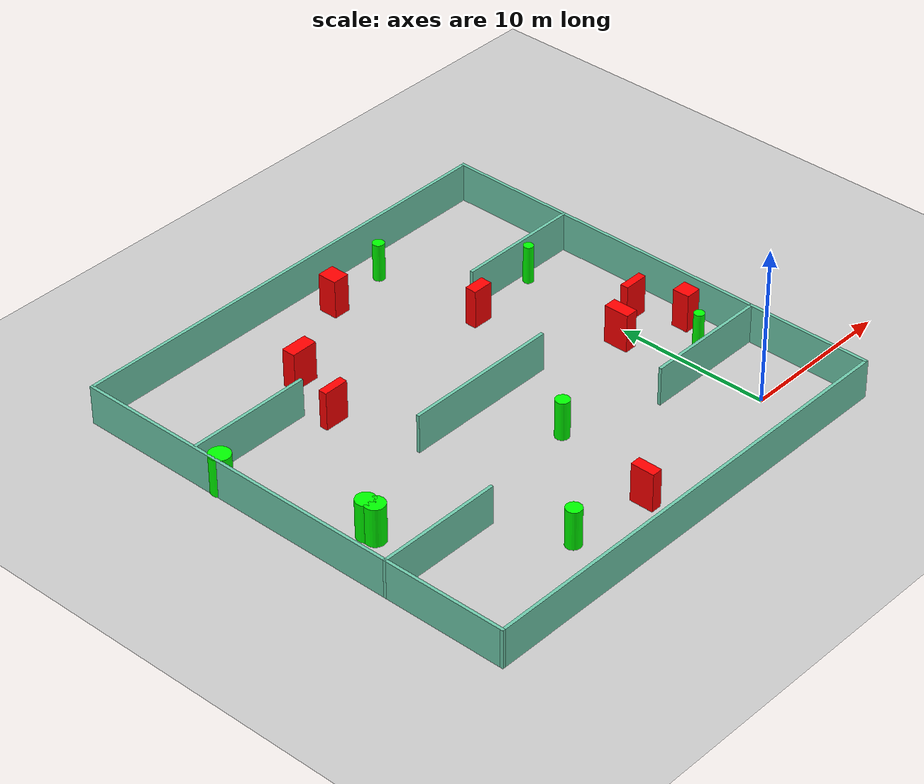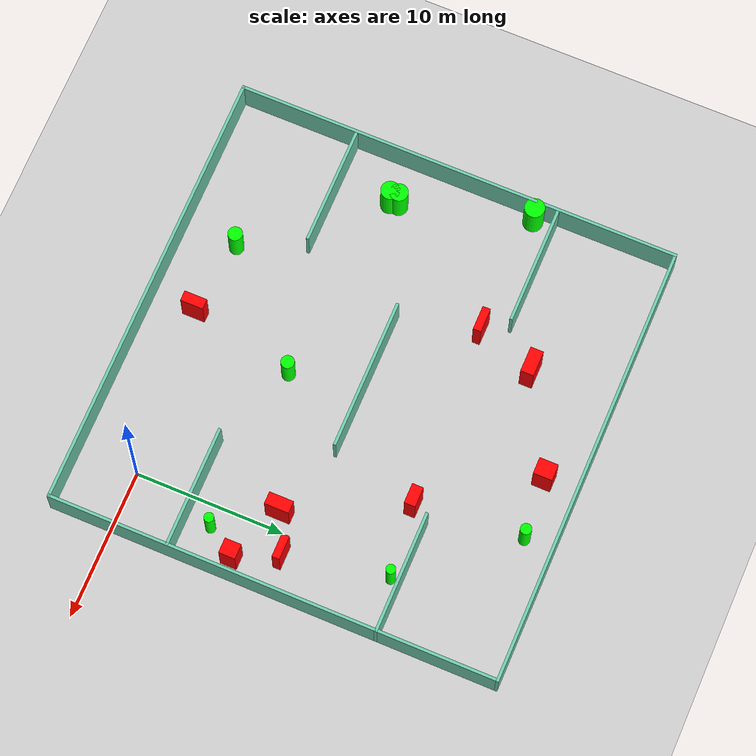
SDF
<sdf version="1.7">
 <world name="default">
  <light name="sun" type="directional">
   <pose>0 0 10 0 -0 0</pose>
   <diffuse>0.8 0.8 0.8 1</diffuse>
   <specular>0.2 0.2 0.2 1</specular>
   <attenuation>
    <range>1000</range>
    <constant>0.9</constant>
    <linear>0.01</linear>
    <quadratic>0.001</quadratic>
   </attenuation>
   <direction>-0.5 0.1 -0.9</direction>
   <spot><inner_angle>0</inner_angle><outer_angle>0</outer_angle><falloff>0</falloff></spot>
  </light>
  <model name="ground_plane">
   <static>1</static>
   <link name="link">
    <collision name="collision">
     <geometry><plane><normal>0 0 1</normal><size>100 100</size></plane></geometry>
     <surface>
      <contact><collide_bitmask>65535</collide_bitmask></contact>
      <friction><ode><mu>100</mu><mu2>50</mu2></ode></friction>
     </surface>
    </collision>
    <visual name="visual">
     <cast_shadows>0</cast_shadows>
     <geometry><plane><normal>0 0 1</normal><size>100 100</size></plane></geometry>
     <material>
      <script><uri>file://media/materials/scripts/gazebo.material</uri><name>Gazebo/Grey</name></script>
     </material>
    </visual>
   </link>
  </model>
  <gravity>0 0 -9.8</gravity>
  <magnetic_field>6e-06 2.3e-05 -4.2e-05</magnetic_field>
  <atmosphere type="adiabatic"/>
  <physics type="ode">
   <max_step_size>0.001</max_step_size>
   <real_time_factor>1</real_time_factor>
   <real_time_update_rate>1000</real_time_update_rate>
  </physics>
  <scene><ambient>0.4 0.4 0.4 1</ambient><background>0.7 0.7 0.7 1</background><shadows>1</shadows></scene>
  <spherical_coordinates>
   <surface_model>EARTH_WGS84</surface_model>
   <latitude_deg>0</latitude_deg>
   <longitude_deg>0</longitude_deg>
   <elevation>0</elevation>
   <heading_deg>0</heading_deg>
  </spherical_coordinates>
  <model name="my_base_walls">
   <link name="Wall_10">
    <collision name="Wall_10_Collision">
     <geometry><box><size>8.2 0.2 2.5</size></box></geometry>
     <pose>0 0 1.25 0 -0 0</pose>
    </collision>
    <visual name="Wall_10_Visual">
     <pose>0 0 1.25 0 -0 0</pose>
     <geometry><box><size>8.2 0.2 2.5</size></box></geometry>
     <material>
      <script><uri>file://media/materials/scripts/gazebo.material</uri><name>Gazebo/Grey</name></script>
      <ambient>0.435294 0.796078 0.67451 1</ambient>
     </material>
     <meta><layer>0</layer></meta>
    </visual>
    <pose>-11 -7 0 0 -0 0</pose>
   </link>
   <link name="Wall_12">
    <collision name="Wall_12_Collision">
     <geometry><box><size>8.2 0.2 2.5</size></box></geometry>
     <pose>0 0 1.25 0 -0 0</pose>
    </collision>
    <visual name="Wall_12_Visual">
     <pose>0 0 1.25 0 -0 0</pose>
     <geometry><box><size>8.2 0.2 2.5</size></box></geometry>
     <material>
      <script><uri>file://media/materials/scripts/gazebo.material</uri><name>Gazebo/Grey</name></script>
      <ambient>0.435294 0.796078 0.67451 1</ambient>
     </material>
     <meta><layer>0</layer></meta>
    </visual>
    <pose>-11 7 0 0 -0 0</pose>
   </link>
   <link name="Wall_14">
    <collision name="Wall_14_Collision">
     <geometry><box><size>8.2 0.2 2.5</size></box></geometry>
     <pose>0 0 1.25 0 -0 0</pose>
    </collision>
    <visual name="Wall_14_Visual">
     <pose>0 0 1.25 0 -0 0</pose>
     <geometry><box><size>8.2 0.2 2.5</size></box></geometry>
     <material>
      <script><uri>file://media/materials/scripts/gazebo.material</uri><name>Gazebo/Grey</name></script>
      <ambient>0.435294 0.796078 0.67451 1</ambient>
     </material>
     <meta><layer>0</layer></meta>
    </visual>
    <pose>11 7 0 0 -0 3.14159</pose>
   </link>
   <link name="Wall_16">
    <collision name="Wall_16_Collision">
     <geometry><box><size>10.2 0.2 2.5</size></box></geometry>
     <pose>0 0 1.25 0 -0 0</pose>
    </collision>
    <visual name="Wall_16_Visual">
     <pose>0 0 1.25 0 -0 0</pose>
     <geometry><box><size>10.2 0.2 2.5</size></box></geometry>
     <material>
      <script><uri>file://media/materials/scripts/gazebo.material</uri><name>Gazebo/Grey</name></script>
      <ambient>0.435294 0.796078 0.67451 1</ambient>
     </material>
     <meta><layer>0</layer></meta>
    </visual>
    <pose>0 0 0 0 -0 3.14159</pose>
   </link>
   <link name="Wall_2">
    <collision name="Wall_2_Collision">
     <geometry><box><size>30.2 0.2 2.5</size></box></geometry>
     <pose>0 0 1.25 0 -0 0</pose>
    </collision>
    <visual name="Wall_2_Visual">
     <pose>0 0 1.25 0 -0 0</pose>
     <geometry><box><size>30.2 0.2 2.5</size></box></geometry>
     <material>
      <script><uri>file://media/materials/scripts/gazebo.material</uri><name>Gazebo/Grey</name></script>
      <ambient>0.435294 0.796078 0.67451 1</ambient>
     </material>
     <meta><layer>0</layer></meta>
    </visual>
    <pose>0 -15 0 0 -0 3.14159</pose>
   </link>
   <link name="Wall_3">
    <collision name="Wall_3_Collision">
     <geometry><box><size>30.2 0.2 2.5</size></box></geometry>
     <pose>0 0 1.25 0 -0 0</pose>
    </collision>
    <visual name="Wall_3_Visual">
     <pose>0 0 1.25 0 -0 0</pose>
     <geometry><box><size>30.2 0.2 2.5</size></box></geometry>
     <material>
      <script><uri>file://media/materials/scripts/gazebo.material</uri><name>Gazebo/Grey</name></script>
      <ambient>0.435294 0.796078 0.67451 1</ambient>
     </material>
     <meta><layer>0</layer></meta>
    </visual>
    <pose>-15 0 0 0 -0 1.5708</pose>
   </link>
   <link name="Wall_4">
    <collision name="Wall_4_Collision">
     <geometry><box><size>30.2 0.2 2.5</size></box></geometry>
     <pose>0 0 1.25 0 -0 0</pose>
    </collision>
    <visual name="Wall_4_Visual">
     <pose>0 0 1.25 0 -0 0</pose>
     <geometry><box><size>30.2 0.2 2.5</size></box></geometry>
     <material>
      <script><uri>file://media/materials/scripts/gazebo.material</uri><name>Gazebo/Grey</name></script>
      <ambient>0.435294 0.796078 0.67451 1</ambient>
     </material>
     <meta><layer>0</layer></meta>
    </visual>
    <pose>0 15 0 0 -0 0</pose>
   </link>
   <link name="Wall_6">
    <collision name="Wall_6_Collision">
     <geometry><box><size>30.2 0.2 2.5</size></box></geometry>
     <pose>0 0 1.25 0 -0 0</pose>
    </collision>
    <visual name="Wall_6_Visual">
     <pose>0 0 1.25 0 -0 0</pose>
     <geometry><box><size>30.2 0.2 2.5</size></box></geometry>
     <material>
      <script><uri>file://media/materials/scripts/gazebo.material</uri><name>Gazebo/Grey</name></script>
      <ambient>0.435294 0.796078 0.67451 1</ambient>
     </material>
     <meta><layer>0</layer></meta>
    </visual>
    <pose>15 0 0 0 -0 1.5708</pose>
   </link>
   <link name="Wall_8">
    <collision name="Wall_8_Collision">
     <geometry><box><size>8.2 0.2 2.5</size></box></geometry>
     <pose>0 0 1.25 0 -0 0</pose>
    </collision>
    <visual name="Wall_8_Visual">
     <pose>0 0 1.25 0 -0 0</pose>
     <geometry><box><size>8.2 0.2 2.5</size></box></geometry>
     <material>
      <script><uri>file://media/materials/scripts/gazebo.material</uri><name>Gazebo/Grey</name></script>
      <ambient>0.435294 0.796078 0.67451 1</ambient>
     </material>
     <meta><layer>0</layer></meta>
    </visual>
    <pose>11 -7 0 0 -0 3.14159</pose>
   </link>
   <static>1</static>
   <pose>-11 11 0 0 -0 0</pose>
  </model>
  <model name="cylinder1">
   <static>1</static>
   <link name="link">
    <inertial>
     <mass>1</mass>
     <inertia><ixx>0.5</ixx><ixy>0</ixy><ixz>0</ixz><iyy>0.5</iyy><iyz>0</iyz><izz>1</izz></inertia>
    </inertial>
    <collision name="collision">
     <geometry><cylinder><radius>0.6667152588854375</radius><length>2.5</length></cylinder></geometry>
    </collision>
    <visual name="visual">
     <geometry><cylinder><radius>0.6667152588854375</radius><length>2.5</length></cylinder></geometry>
     <material>
      <ambient>0 1 0 1</ambient>
      <diffuse>0 1 0 1</diffuse>
      <specular>0.1 0.1 0.1 1</specular>
      <emissive>0 0 0 0</emissive>
     </material>
    </visual>
   </link>
   <pose>-25.516444797574618 16.556116974125956 1.25 0 0 0</pose>
  </model>
  <model name="cylinder2">
   <static>1</static>
   <link name="link">
    <inertial>
     <mass>1</mass>
     <inertia><ixx>0.5</ixx><ixy>0</ixy><ixz>0</ixz><iyy>0.5</iyy><iyz>0</iyz><izz>1</izz></inertia>
    </inertial>
    <collision name="collision">
     <geometry><cylinder><radius>0.3737477724439043</radius><length>2.5</length></cylinder></geometry>
    </collision>
    <visual name="visual">
     <geometry><cylinder><radius>0.3737477724439043</radius><length>2.5</length></cylinder></geometry>
     <material>
      <ambient>0 1 0 1</ambient>
      <diffuse>0 1 0 1</diffuse>
      <specular>0.1 0.1 0.1 1</specular>
      <emissive>0 0 0 0</emissive>
     </material>
    </visual>
   </link>
   <pose>-5.505367031244267 24.020359138373884 1.25 0 0 0</pose>
  </model>
  <model name="cylinder3">
   <static>1</static>
   <link name="link">
    <inertial>
     <mass>1</mass>
     <inertia><ixx>0.5</ixx><ixy>0</ixy><ixz>0</ixz><iyy>0.5</iyy><iyz>0</iyz><izz>1</izz></inertia>
    </inertial>
    <collision name="collision">
     <geometry><cylinder><radius>0.44568754188689175</radius><length>2.5</length></cylinder></geometry>
    </collision>
    <visual name="visual">
     <geometry><cylinder><radius>0.44568754188689175</radius><length>2.5</length></cylinder></geometry>
     <material>
      <ambient>0 1 0 1</ambient>
      <diffuse>0 1 0 1</diffuse>
      <specular>0.1 0.1 0.1 1</specular>
      <emissive>0 0 0 0</emissive>
     </material>
    </visual>
   </link>
   <pose>-9.790036317065482 6.142421599829012 1.25 0 0 0</pose>
  </model>
  <model name="cylinder4">
   <static>1</static>
   <link name="link">
    <inertial>
     <mass>1</mass>
     <inertia><ixx>0.5</ixx><ixy>0</ixy><ixz>0</ixz><iyy>0.5</iyy><iyz>0</iyz><izz>1</izz></inertia>
    </inertial>
    <collision name="collision">
     <geometry><cylinder><radius>0.6139552819495597</radius><length>2.5</length></cylinder></geometry>
    </collision>
    <visual name="visual">
     <geometry><cylinder><radius>0.6139552819495597</radius><length>2.5</length></cylinder></geometry>
     <material>
      <ambient>0 1 0 1</ambient>
      <diffuse>0 1 0 1</diffuse>
      <specular>0.1 0.1 0.1 1</specular>
      <emissive>0 0 0 0</emissive>
     </material>
    </visual>
   </link>
   <pose>-23.128783240421342 8.137071886700024 1.25 0 0 0</pose>
  </model>
  <model name="cylinder5">
   <static>1</static>
   <link name="link">
    <inertial>
     <mass>1</mass>
     <inertia><ixx>0.5</ixx><ixy>0</ixy><ixz>0</ixz><iyy>0.5</iyy><iyz>0</iyz><izz>1</izz></inertia>
    </inertial>
    <collision name="collision">
     <geometry><cylinder><radius>0.3270590452851911</radius><length>2.5</length></cylinder></geometry>
    </collision>
    <visual name="visual">
     <geometry><cylinder><radius>0.3270590452851911</radius><length>2.5</length></cylinder></geometry>
     <material>
      <ambient>0 1 0 1</ambient>
      <diffuse>0 1 0 1</diffuse>
      <specular>0.1 0.1 0.1 1</specular>
      <emissive>0 0 0 0</emissive>
     </material>
    </visual>
   </link>
   <pose>1.430259271504692 5.698677138476116 1.25 0 0 0</pose>
  </model>
  <model name="cylinder6">
   <static>1</static>
   <link name="link">
    <inertial>
     <mass>1</mass>
     <inertia><ixx>0.5</ixx><ixy>0</ixy><ixz>0</ixz><iyy>0.5</iyy><iyz>0</iyz><izz>1</izz></inertia>
    </inertial>
    <collision name="collision">
     <geometry><cylinder><radius>0.4872371478784939</radius><length>2.5</length></cylinder></geometry>
    </collision>
    <visual name="visual">
     <geometry><cylinder><radius>0.4872371478784939</radius><length>2.5</length></cylinder></geometry>
     <material>
      <ambient>0 1 0 1</ambient>
      <diffuse>0 1 0 1</diffuse>
      <specular>0.1 0.1 0.1 1</specular>
      <emissive>0 0 0 0</emissive>
     </material>
    </visual>
   </link>
   <pose>-16.429818852912845 -0.3807831901179526 1.25 0 0 0</pose>
  </model>
  <model name="cylinder7">
   <static>1</static>
   <link name="link">
    <inertial>
     <mass>1</mass>
     <inertia><ixx>0.5</ixx><ixy>0</ixy><ixz>0</ixz><iyy>0.5</iyy><iyz>0</iyz><izz>1</izz></inertia>
    </inertial>
    <collision name="collision">
     <geometry><cylinder><radius>0.32286874336680604</radius><length>2.5</length></cylinder></geometry>
    </collision>
    <visual name="visual">
     <geometry><cylinder><radius>0.32286874336680604</radius><length>2.5</length></cylinder></geometry>
     <material>
      <ambient>0 1 0 1</ambient>
      <diffuse>0 1 0 1</diffuse>
      <specular>0.1 0.1 0.1 1</specular>
      <emissive>0 0 0 0</emissive>
     </material>
    </visual>
   </link>
   <pose>0.10123914506734977 17.333885098602224 1.25 0 0 0</pose>
  </model>
  <model name="cylinder8">
   <static>1</static>
   <link name="link">
    <inertial>
     <mass>1</mass>
     <inertia><ixx>0.5</ixx><ixy>0</ixy><ixz>0</ixz><iyy>0.5</iyy><iyz>0</iyz><izz>1</izz></inertia>
    </inertial>
    <collision name="collision">
     <geometry><cylinder><radius>0.6340549064327886</radius><length>2.5</length></cylinder></geometry>
    </collision>
    <visual name="visual">
     <geometry><cylinder><radius>0.6340549064327886</radius><length>2.5</length></cylinder></geometry>
     <material>
      <ambient>0 1 0 1</ambient>
      <diffuse>0 1 0 1</diffuse>
      <specular>0.1 0.1 0.1 1</specular>
      <emissive>0 0 0 0</emissive>
     </material>
    </visual>
   </link>
   <pose>-23.041473714689452 7.5668798836765205 1.25 0 0 0</pose>
  </model>
  <model name="box1">
   <static>1</static>
   <link name="link">
    <inertial>
     <mass>1</mass>
     <inertia><ixx>0.083</ixx><ixy>0</ixy><ixz>0</ixz><iyy>0.083</iyy><iyz>0</iyz><izz>0.083</izz></inertia>
    </inertial>
    <collision name="collision">
     <geometry><box><size>0.8258800428215853 1.634994394120532 2.5</size></box></geometry>
    </collision>
    <visual name="visual">
     <geometry><box><size>0.8258800428215853 1.634994394120532 2.5</size></box></geometry>
     <material>
      <ambient>1 0 0 1</ambient>
      <diffuse>1 0 0 1</diffuse>
      <specular>0.1 0.1 0.1 1</specular>
      <emissive>0 0 0 0</emissive>
     </material>
    </visual>
    <sensor name="my_contact" type="contact">
     <contact><collision>box_collision</collision><topic>__default_topic__</topic></contact>
    </sensor>
   </link>
   <pose>-1.1352610210050926 9.302101735944074 1.25 0 0 0</pose>
  </model>
  <model name="box2">
   <static>1</static>
   <link name="link">
    <inertial>
     <mass>1</mass>
     <inertia><ixx>0.083</ixx><ixy>0</ixy><ixz>0</ixz><iyy>0.083</iyy><iyz>0</iyz><izz>0.083</izz></inertia>
    </inertial>
    <collision name="collision">
     <geometry><box><size>0.6915953975500875 1.5412371417443604 2.5</size></box></geometry>
    </collision>
    <visual name="visual">
     <geometry><box><size>0.6915953975500875 1.5412371417443604 2.5</size></box></geometry>
     <material>
      <ambient>1 0 0 1</ambient>
      <diffuse>1 0 0 1</diffuse>
      <specular>0.1 0.1 0.1 1</specular>
      <emissive>0 0 0 0</emissive>
     </material>
    </visual>
    <sensor name="my_contact" type="contact">
     <contact><collision>box_collision</collision><topic>__default_topic__</topic></contact>
    </sensor>
   </link>
   <pose>-11.289704253538709 -0.9879010240261401 1.25 0 0 0</pose>
  </model>
  <model name="box3">
   <static>1</static>
   <link name="link">
    <inertial>
     <mass>1</mass>
     <inertia><ixx>0.083</ixx><ixy>0</ixy><ixz>0</ixz><iyy>0.083</iyy><iyz>0</iyz><izz>0.083</izz></inertia>
    </inertial>
    <collision name="collision">
     <geometry><box><size>1.3476355921828187 0.7479571964580785 2.5</size></box></geometry>
    </collision>
    <visual name="visual">
     <geometry><box><size>1.3476355921828187 0.7479571964580785 2.5</size></box></geometry>
     <material>
      <ambient>1 0 0 1</ambient>
      <diffuse>1 0 0 1</diffuse>
      <specular>0.1 0.1 0.1 1</specular>
      <emissive>0 0 0 0</emissive>
     </material>
    </visual>
    <sensor name="my_contact" type="contact">
     <contact><collision>box_collision</collision><topic>__default_topic__</topic></contact>
    </sensor>
   </link>
   <pose>-4.822593056983372 16.800852647727517 1.25 0 0 0</pose>
  </model>
  <model name="box4">
   <static>1</static>
   <link name="link">
    <inertial>
     <mass>1</mass>
     <inertia><ixx>0.083</ixx><ixy>0</ixy><ixz>0</ixz><iyy>0.083</iyy><iyz>0</iyz><izz>0.083</izz></inertia>
    </inertial>
    <collision name="collision">
     <geometry><box><size>1.6007360533881447 0.509399749335341 2.5</size></box></geometry>
    </collision>
    <visual name="visual">
     <geometry><box><size>1.6007360533881447 0.509399749335341 2.5</size></box></geometry>
     <material>
      <ambient>1 0 0 1</ambient>
      <diffuse>1 0 0 1</diffuse>
      <specular>0.1 0.1 0.1 1</specular>
      <emissive>0 0 0 0</emissive>
     </material>
    </visual>
    <sensor name="my_contact" type="contact">
     <contact><collision>box_collision</collision><topic>__default_topic__</topic></contact>
    </sensor>
   </link>
   <pose>1.411608126490421 10.520562233907512 1.25 0 0 0</pose>
  </model>
  <model name="box5">
   <static>1</static>
   <link name="link">
    <inertial>
     <mass>1</mass>
     <inertia><ixx>0.083</ixx><ixy>0</ixy><ixz>0</ixz><iyy>0.083</iyy><iyz>0</iyz><izz>0.083</izz></inertia>
    </inertial>
    <collision name="collision">
     <geometry><box><size>1.104405126206336 1.265407513849906 2.5</size></box></geometry>
    </collision>
    <visual name="visual">
     <geometry><box><size>1.104405126206336 1.265407513849906 2.5</size></box></geometry>
     <material>
      <ambient>1 0 0 1</ambient>
      <diffuse>1 0 0 1</diffuse>
      <specular>0.1 0.1 0.1 1</specular>
      <emissive>0 0 0 0</emissive>
     </material>
    </visual>
    <sensor name="my_contact" type="contact">
     <contact><collision>box_collision</collision><topic>__default_topic__</topic></contact>
    </sensor>
   </link>
   <pose>-9.57992419073588 23.702093985711716 1.25 0 0 0</pose>
  </model>
  <model name="box6">
   <static>1</static>
   <link name="link">
    <inertial>
     <mass>1</mass>
     <inertia><ixx>0.083</ixx><ixy>0</ixy><ixz>0</ixz><iyy>0.083</iyy><iyz>0</iyz><izz>0.083</izz></inertia>
    </inertial>
    <collision name="collision">
     <geometry><box><size>1.7283581812770814 0.8816044695654317 2.5</size></box></geometry>
    </collision>
    <visual name="visual">
     <geometry><box><size>1.7283581812770814 0.8816044695654317 2.5</size></box></geometry>
     <material>
      <ambient>1 0 0 1</ambient>
      <diffuse>1 0 0 1</diffuse>
      <specular>0.1 0.1 0.1 1</specular>
      <emissive>0 0 0 0</emissive>
     </material>
    </visual>
    <sensor name="my_contact" type="contact">
     <contact><collision>box_collision</collision><topic>__default_topic__</topic></contact>
    </sensor>
   </link>
   <pose>-15.810554933756462 20.27337904284673 1.25 0 0 0</pose>
  </model>
  <model name="box7">
   <static>1</static>
   <link name="link">
    <inertial>
     <mass>1</mass>
     <inertia><ixx>0.083</ixx><ixy>0</ixy><ixz>0</ixz><iyy>0.083</iyy><iyz>0</iyz><izz>0.083</izz></inertia>
    </inertial>
    <collision name="collision">
     <geometry><box><size>1.0149217758947464 1.0995860052839908 2.5</size></box></geometry>
    </collision>
    <visual name="visual">
     <geometry><box><size>1.0149217758947464 1.0995860052839908 2.5</size></box></geometry>
     <material>
      <ambient>1 0 0 1</ambient>
      <diffuse>1 0 0 1</diffuse>
      <specular>0.1 0.1 0.1 1</specular>
      <emissive>0 0 0 0</emissive>
     </material>
    </visual>
    <sensor name="my_contact" type="contact">
     <contact><collision>box_collision</collision><topic>__default_topic__</topic></contact>
    </sensor>
   </link>
   <pose>2.7481269582183607 7.7002137246196956 1.25 0 0 0</pose>
  </model>
  <model name="box8">
   <static>1</static>
   <link name="link">
    <inertial>
     <mass>1</mass>
     <inertia><ixx>0.083</ixx><ixy>0</ixy><ixz>0</ixz><iyy>0.083</iyy><iyz>0</iyz><izz>0.083</izz></inertia>
    </inertial>
    <collision name="collision">
     <geometry><box><size>1.641796476534035 0.5297331884390739 2.5</size></box></geometry>
    </collision>
    <visual name="visual">
     <geometry><box><size>1.641796476534035 0.5297331884390739 2.5</size></box></geometry>
     <material>
      <ambient>1 0 0 1</ambient>
      <diffuse>1 0 0 1</diffuse>
      <specular>0.1 0.1 0.1 1</specular>
      <emissive>0 0 0 0</emissive>
     </material>
    </visual>
    <sensor name="my_contact" type="contact">
     <contact><collision>box_collision</collision><topic>__default_topic__</topic></contact>
    </sensor>
   </link>
   <pose>-17.20285102235249 16.293852985660195 1.25 0 0 0</pose>
  </model>
 </world>
</sdf>
